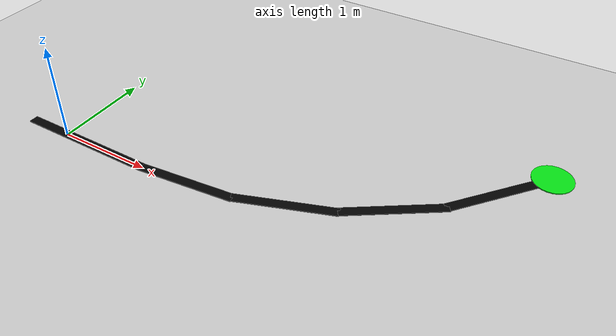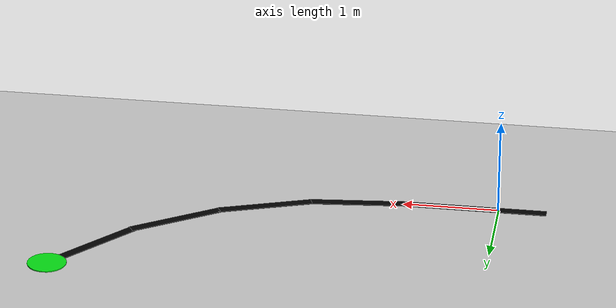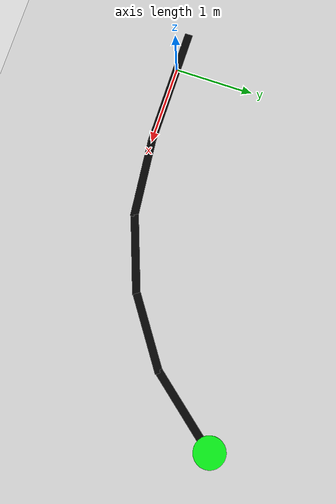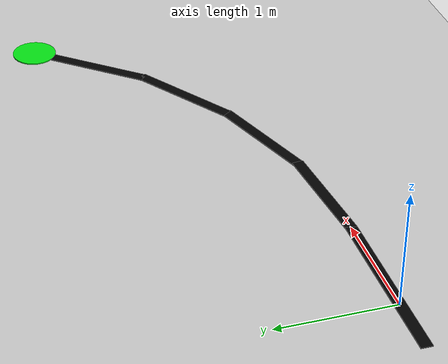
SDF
<?xml version="1.0"?>
<sdf version="1.6">
  <world name="aubo_line_follow">
    <include><uri>model://ground_plane</uri></include>
    <include><uri>model://sun</uri></include>

    <gui fullscreen="0">
      <camera name="course_camera">
        <pose>6 -7 7 0 0.65 2.0</pose>
        <view_controller>orbit</view_controller>
      </camera>
    </gui>

    <!-- A continuous, gently curving black guide line.  The segments are
         visual-only so the wheels do not encounter artificial bumps. -->
    <model name="guide_line">
      <static>true</static>
      <link name="line_link">
        <visual name="segment_0">
          <pose>0.25 0 0.006 0 0 0</pose>
          <geometry><box><size>1.50 0.10 0.008</size></box></geometry>
          <material><ambient>0.005 0.005 0.005 1</ambient><diffuse>0.01 0.01 0.01 1</diffuse></material>
        </visual>
        <visual name="segment_1">
          <pose>1.48 0.05 0.006 0 0 0.10</pose>
          <geometry><box><size>1.00 0.10 0.008</size></box></geometry>
          <material><ambient>0.005 0.005 0.005 1</ambient><diffuse>0.01 0.01 0.01 1</diffuse></material>
        </visual>
        <visual name="segment_2">
          <pose>2.42 0.27 0.006 0 0 0.35</pose>
          <geometry><box><size>1.00 0.10 0.008</size></box></geometry>
          <material><ambient>0.005 0.005 0.005 1</ambient><diffuse>0.01 0.01 0.01 1</diffuse></material>
        </visual>
        <visual name="segment_3">
          <pose>3.28 0.72 0.006 0 0 0.60</pose>
          <geometry><box><size>1.00 0.10 0.008</size></box></geometry>
          <material><ambient>0.005 0.005 0.005 1</ambient><diffuse>0.01 0.01 0.01 1</diffuse></material>
        </visual>
        <visual name="segment_4">
          <pose>4.00 1.39 0.006 0 0 0.88</pose>
          <geometry><box><size>1.05 0.10 0.008</size></box></geometry>
          <material><ambient>0.005 0.005 0.005 1</ambient><diffuse>0.01 0.01 0.01 1</diffuse></material>
        </visual>
      </link>
    </model>

    <model name="line_finish_marker">
      <static>true</static><pose>4.38 1.86 0.007 0 0 0</pose>
      <link name="link"><visual name="visual">
        <geometry><cylinder><radius>0.20</radius><length>0.010</length></cylinder></geometry>
        <material><ambient>0.02 0.55 0.05 1</ambient><diffuse>0.02 0.90 0.08 1</diffuse></material>
      </visual></link>
    </model>

    <physics name="line_follow_physics" type="ode">
      <max_step_size>0.001</max_step_size>
      <real_time_update_rate>1000</real_time_update_rate>
      <ode><solver><type>quick</type><iters>100</iters><sor>1.3</sor></solver></ode>
    </physics>
  </world>
</sdf>
